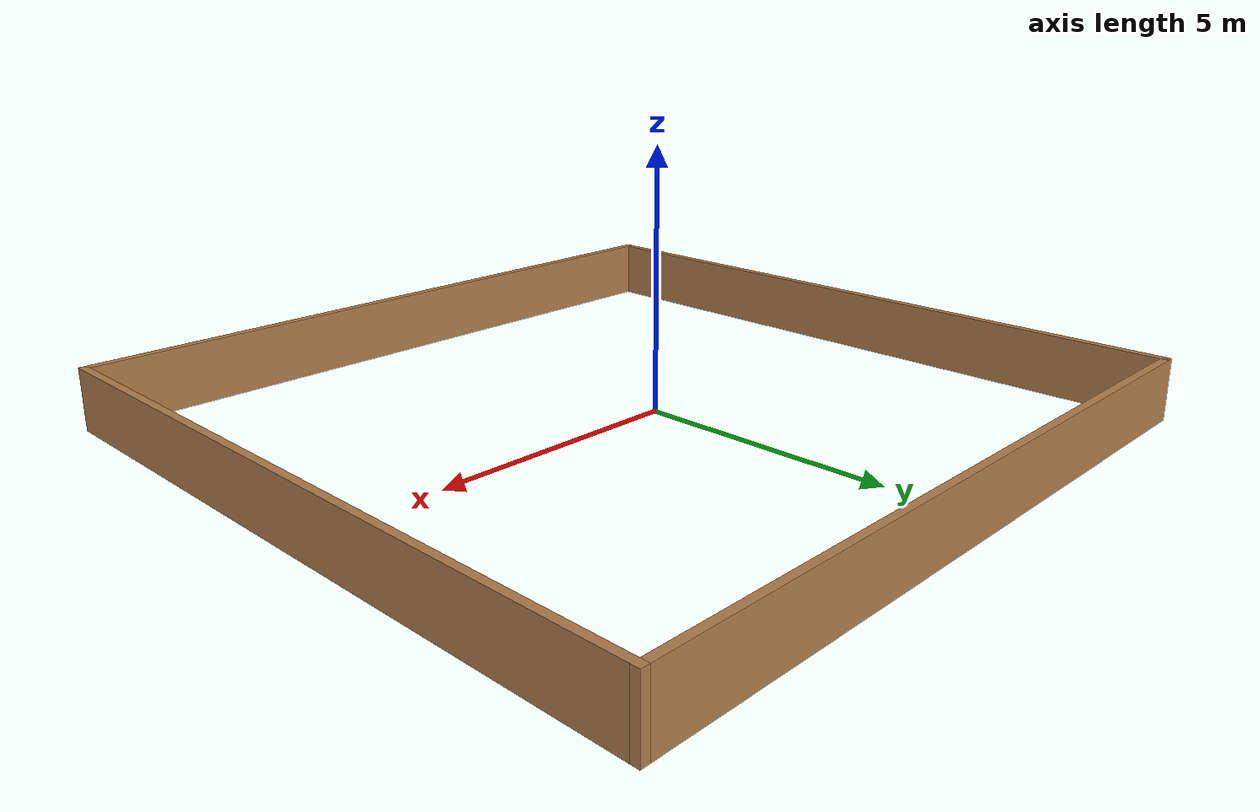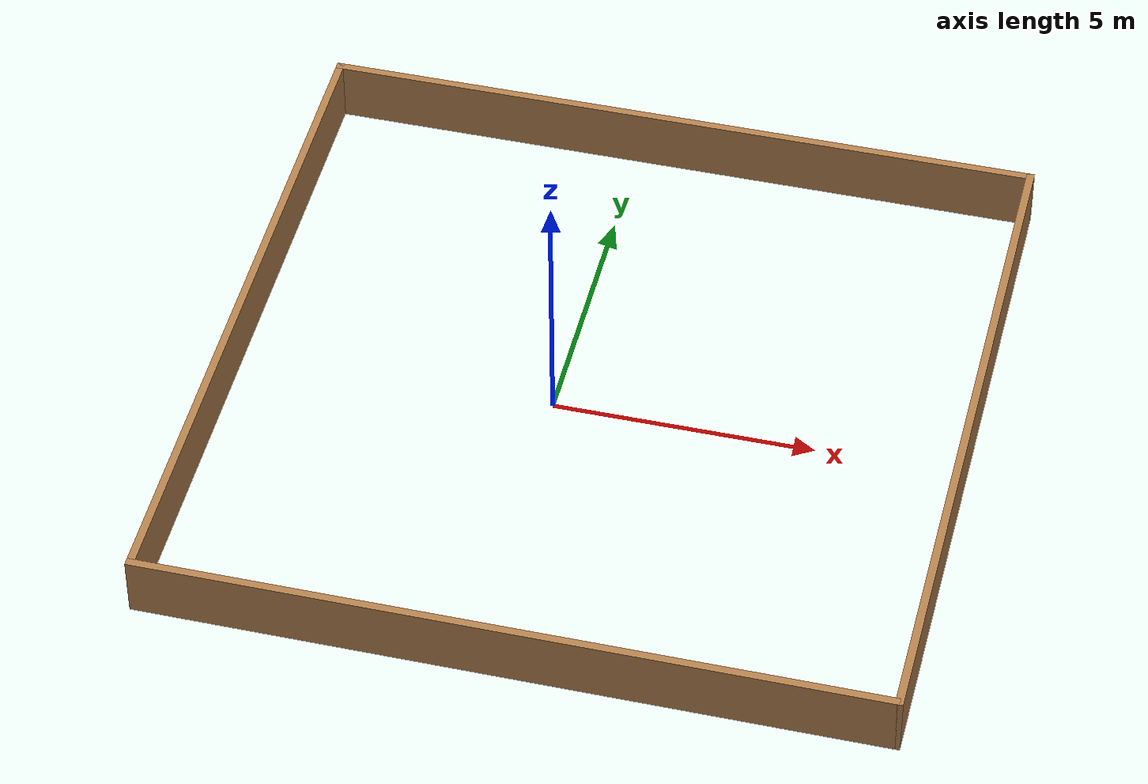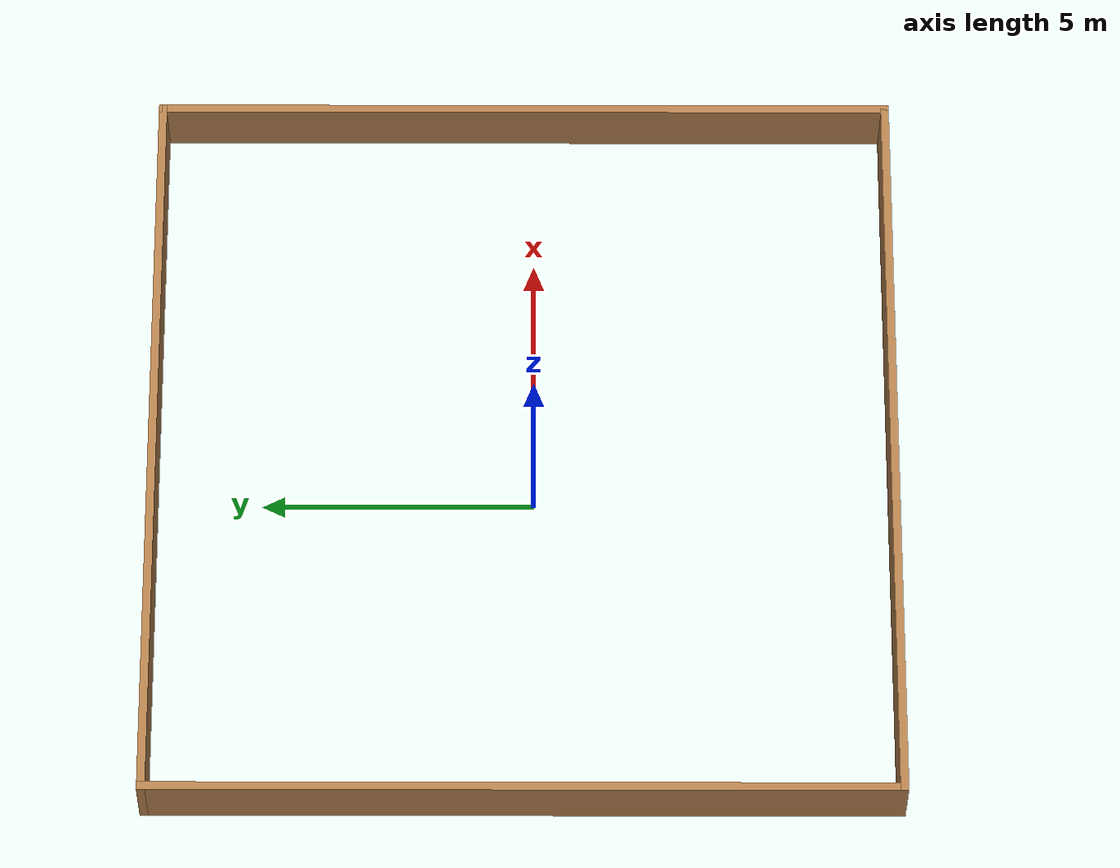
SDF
<?xml version='1.0'?>
<sdf version='1.7'>
  <model name='turtlebot3_park'>
    <pose>0.855 0.195 0 0 -0 0</pose>
    <link name='Wall_0'>
      <collision name='Wall_0_Collision'>
        <geometry>
          <box>
            <size>14 0.15 1.2</size>
          </box>
        </geometry>
        <pose>0 0 0.6 0 -0 0</pose>
      </collision>
      <visual name='Wall_0_Visual'>
        <pose>0 0 0.6 0 -0 0</pose>
        <geometry>
          <box>
            <size>14 0.15 1.2</size>
          </box>
        </geometry>
        <material>
          <script>
            <uri>file://media/materials/scripts/gazebo.material</uri>
            <name>Gazebo/Wood</name>
          </script>
          <ambient>1 1 1 1</ambient>
        </material>
        <meta>
          <layer>0</layer>
        </meta>
      </visual>
      <pose>0 -6.8 0 0 -0 0</pose>
    </link>
    <link name='Wall_1'>
      <collision name='Wall_1_Collision'>
        <geometry>
          <box>
            <size>13.75 0.15 1.2</size>
          </box>
        </geometry>
        <pose>0 0 0.6 0 -0 0</pose>
      </collision>
      <visual name='Wall_1_Visual'>
        <pose>0 0 0.6 0 -0 0</pose>
        <geometry>
          <box>
            <size>13.75 0.15 1.2</size>
          </box>
        </geometry>
        <material>
          <script>
            <uri>file://media/materials/scripts/gazebo.material</uri>
            <name>Gazebo/Wood</name>
          </script>
          <ambient>1 1 1 1</ambient>
        </material>
        <meta>
          <layer>0</layer>
        </meta>
      </visual>
      <pose>6.925 -0 0 0 -0 1.5708</pose>
    </link>
    <link name='Wall_2'>
      <collision name='Wall_2_Collision'>
        <geometry>
          <box>
            <size>14 0.15 1.2</size>
          </box>
        </geometry>
        <pose>0 0 0.6 0 -0 0</pose>
      </collision>
      <visual name='Wall_2_Visual'>
        <pose>0 0 0.6 0 -0 0</pose>
        <geometry>
          <box>
            <size>14 0.15 1.2</size>
          </box>
        </geometry>
        <material>
          <script>
            <uri>file://media/materials/scripts/gazebo.material</uri>
            <name>Gazebo/Wood</name>
          </script>
          <ambient>1 1 1 1</ambient>
        </material>
        <meta>
          <layer>0</layer>
        </meta>
      </visual>
      <pose>0 6.8 0 0 -0 3.14159</pose>
    </link>
    <link name='Wall_3'>
      <collision name='Wall_3_Collision'>
        <geometry>
          <box>
            <size>13.75 0.15 1.2</size>
          </box>
        </geometry>
        <pose>0 0 0.6 0 -0 0</pose>
      </collision>
      <visual name='Wall_3_Visual'>
        <pose>0 0 0.6 0 -0 0</pose>
        <geometry>
          <box>
            <size>13.75 0.15 1.2</size>
          </box>
        </geometry>
        <material>
          <script>
            <uri>file://media/materials/scripts/gazebo.material</uri>
            <name>Gazebo/Wood</name>
          </script>
          <ambient>1 1 1 1</ambient>
        </material>
        <meta>
          <layer>0</layer>
        </meta>
      </visual>
      <pose>-6.925 -0 0 0 -0 -1.5708</pose>
    </link>
    <static>1</static>
  </model>
</sdf>
